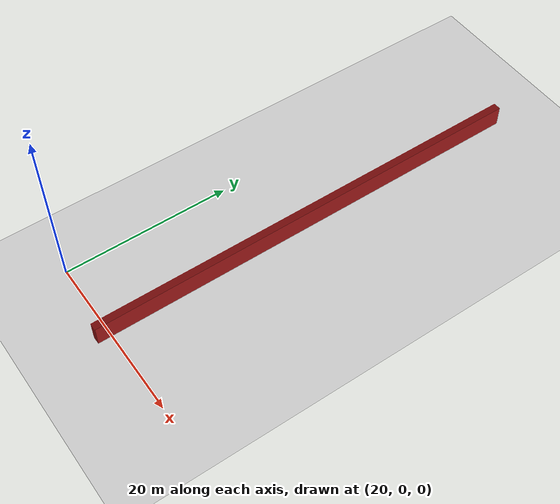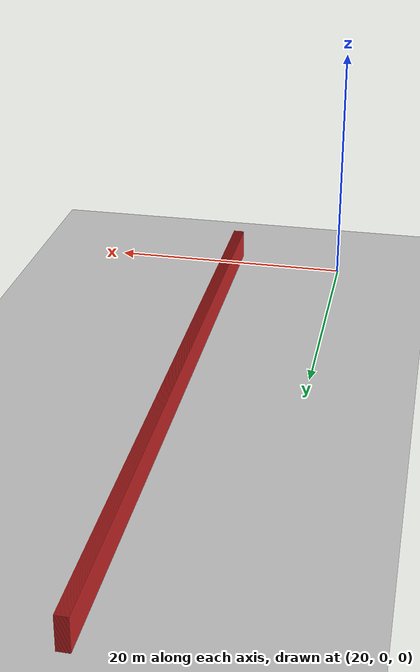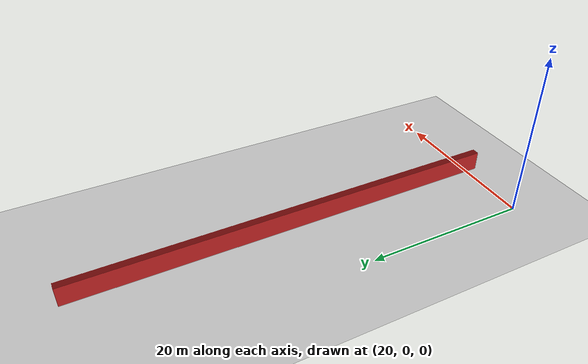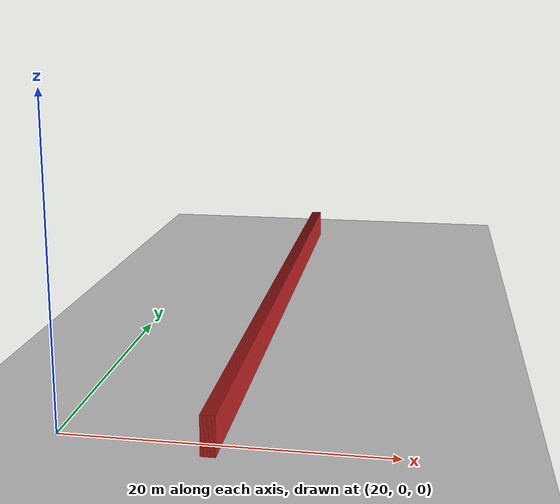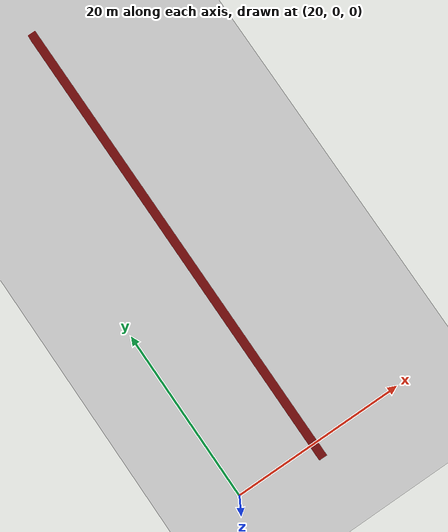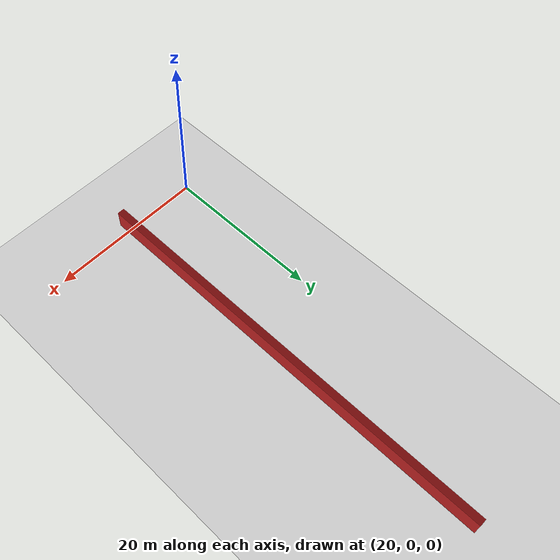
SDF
<sdf version="1.4">
 <world name="1_wall">
  <model name="ground_plane">
   <static>1</static>
   <link name="link">
    <collision name="collision">
     <geometry><plane><normal>0 0 1</normal><size>1000 1000</size></plane></geometry>
     <surface><friction><ode><mu>100</mu><mu2>50</mu2></ode></friction></surface>
    </collision>
    <visual name="visual">
     <cast_shadows>0</cast_shadows>
     <geometry><plane><normal>0 0 1</normal><size>10000 10000</size></plane></geometry>
     <material>
      <script><uri>file://media/materials/scripts/gazebo.material</uri><name>Gazebo/Grey</name></script>
     </material>
    </visual>
    <velocity_decay><linear>0</linear><angular>0</angular></velocity_decay>
   </link>
  </model>
  <model name="Wall_609">
   <static>1</static>
   <link name="Wall_609">
    <collision name="Wall_Collision_609">
     <geometry><box><size>53.65 0.05 2.5</size></box></geometry>
     <pose>0 0 1.25 0 -0 0</pose>
    </collision>
    <visual name="Wall_Visual_609">
     <pose>0 0 1.25 0 -0 0</pose>
     <geometry><box><size>53.65 0.05 2.5</size></box></geometry>
     <material>
      <script><uri>file://media/materials/scripts/gazebo.material</uri><name>Gazebo/Red</name></script>
     </material>
    </visual>
    <velocity_decay><linear>0</linear><angular>0</angular></velocity_decay>
    <pose>28.95 25.3 0 0 0 1.5707963267948966</pose>
   </link>
  </model>
  <model name="Wall_610">
   <static>1</static>
   <link name="Wall_610">
    <collision name="Wall_Collision_610">
     <geometry><box><size>53.65 0.05 2.5</size></box></geometry>
     <pose>0 0 1.25 0 -0 0</pose>
    </collision>
    <visual name="Wall_Visual_610">
     <pose>0 0 1.25 0 -0 0</pose>
     <geometry><box><size>53.65 0.05 2.5</size></box></geometry>
     <material>
      <script><uri>file://media/materials/scripts/gazebo.material</uri><name>Gazebo/Red</name></script>
     </material>
    </visual>
    <velocity_decay><linear>0</linear><angular>0</angular></velocity_decay>
    <pose>29.0 25.3 0 0 0 1.5707963267948966</pose>
   </link>
  </model>
  <model name="Wall_611">
   <static>1</static>
   <link name="Wall_611">
    <collision name="Wall_Collision_611">
     <geometry><box><size>53.65 0.05 2.5</size></box></geometry>
     <pose>0 0 1.25 0 -0 0</pose>
    </collision>
    <visual name="Wall_Visual_611">
     <pose>0 0 1.25 0 -0 0</pose>
     <geometry><box><size>53.65 0.05 2.5</size></box></geometry>
     <material>
      <script><uri>file://media/materials/scripts/gazebo.material</uri><name>Gazebo/Red</name></script>
     </material>
    </visual>
    <velocity_decay><linear>0</linear><angular>0</angular></velocity_decay>
    <pose>29.05 25.3 0 0 0 1.5707963267948966</pose>
   </link>
  </model>
  <model name="Wall_612">
   <static>1</static>
   <link name="Wall_612">
    <collision name="Wall_Collision_612">
     <geometry><box><size>53.65 0.05 2.5</size></box></geometry>
     <pose>0 0 1.25 0 -0 0</pose>
    </collision>
    <visual name="Wall_Visual_612">
     <pose>0 0 1.25 0 -0 0</pose>
     <geometry><box><size>53.65 0.05 2.5</size></box></geometry>
     <material>
      <script><uri>file://media/materials/scripts/gazebo.material</uri><name>Gazebo/Red</name></script>
     </material>
    </visual>
    <velocity_decay><linear>0</linear><angular>0</angular></velocity_decay>
    <pose>29.1 25.3 0 0 0 1.5707963267948966</pose>
   </link>
  </model>
  <model name="Wall_613">
   <static>1</static>
   <link name="Wall_613">
    <collision name="Wall_Collision_613">
     <geometry><box><size>53.65 0.05 2.5</size></box></geometry>
     <pose>0 0 1.25 0 -0 0</pose>
    </collision>
    <visual name="Wall_Visual_613">
     <pose>0 0 1.25 0 -0 0</pose>
     <geometry><box><size>53.65 0.05 2.5</size></box></geometry>
     <material>
      <script><uri>file://media/materials/scripts/gazebo.material</uri><name>Gazebo/Red</name></script>
     </material>
    </visual>
    <velocity_decay><linear>0</linear><angular>0</angular></velocity_decay>
    <pose>29.15 25.3 0 0 0 1.5707963267948966</pose>
   </link>
  </model>
  <model name="Wall_614">
   <static>1</static>
   <link name="Wall_614">
    <collision name="Wall_Collision_614">
     <geometry><box><size>53.65 0.05 2.5</size></box></geometry>
     <pose>0 0 1.25 0 -0 0</pose>
    </collision>
    <visual name="Wall_Visual_614">
     <pose>0 0 1.25 0 -0 0</pose>
     <geometry><box><size>53.65 0.05 2.5</size></box></geometry>
     <material>
      <script><uri>file://media/materials/scripts/gazebo.material</uri><name>Gazebo/Red</name></script>
     </material>
    </visual>
    <velocity_decay><linear>0</linear><angular>0</angular></velocity_decay>
    <pose>29.2 25.3 0 0 0 1.5707963267948966</pose>
   </link>
  </model>
  <model name="Wall_615">
   <static>1</static>
   <link name="Wall_615">
    <collision name="Wall_Collision_615">
     <geometry><box><size>53.65 0.05 2.5</size></box></geometry>
     <pose>0 0 1.25 0 -0 0</pose>
    </collision>
    <visual name="Wall_Visual_615">
     <pose>0 0 1.25 0 -0 0</pose>
     <geometry><box><size>53.65 0.05 2.5</size></box></geometry>
     <material>
      <script><uri>file://media/materials/scripts/gazebo.material</uri><name>Gazebo/Red</name></script>
     </material>
    </visual>
    <velocity_decay><linear>0</linear><angular>0</angular></velocity_decay>
    <pose>29.25 25.3 0 0 0 1.5707963267948966</pose>
   </link>
  </model>
  <model name="Wall_616">
   <static>1</static>
   <link name="Wall_616">
    <collision name="Wall_Collision_616">
     <geometry><box><size>53.65 0.05 2.5</size></box></geometry>
     <pose>0 0 1.25 0 -0 0</pose>
    </collision>
    <visual name="Wall_Visual_616">
     <pose>0 0 1.25 0 -0 0</pose>
     <geometry><box><size>53.65 0.05 2.5</size></box></geometry>
     <material>
      <script><uri>file://media/materials/scripts/gazebo.material</uri><name>Gazebo/Red</name></script>
     </material>
    </visual>
    <velocity_decay><linear>0</linear><angular>0</angular></velocity_decay>
    <pose>29.3 25.3 0 0 0 1.5707963267948966</pose>
   </link>
  </model>
  <model name="Wall_617">
   <static>1</static>
   <link name="Wall_617">
    <collision name="Wall_Collision_617">
     <geometry><box><size>53.65 0.05 2.5</size></box></geometry>
     <pose>0 0 1.25 0 -0 0</pose>
    </collision>
    <visual name="Wall_Visual_617">
     <pose>0 0 1.25 0 -0 0</pose>
     <geometry><box><size>53.65 0.05 2.5</size></box></geometry>
     <material>
      <script><uri>file://media/materials/scripts/gazebo.material</uri><name>Gazebo/Red</name></script>
     </material>
    </visual>
    <velocity_decay><linear>0</linear><angular>0</angular></velocity_decay>
    <pose>29.35 25.3 0 0 0 1.5707963267948966</pose>
   </link>
  </model>
  <model name="Wall_618">
   <static>1</static>
   <link name="Wall_618">
    <collision name="Wall_Collision_618">
     <geometry><box><size>53.65 0.05 2.5</size></box></geometry>
     <pose>0 0 1.25 0 -0 0</pose>
    </collision>
    <visual name="Wall_Visual_618">
     <pose>0 0 1.25 0 -0 0</pose>
     <geometry><box><size>53.65 0.05 2.5</size></box></geometry>
     <material>
      <script><uri>file://media/materials/scripts/gazebo.material</uri><name>Gazebo/Red</name></script>
     </material>
    </visual>
    <velocity_decay><linear>0</linear><angular>0</angular></velocity_decay>
    <pose>29.4 25.3 0 0 0 1.5707963267948966</pose>
   </link>
  </model>
  <model name="Wall_619">
   <static>1</static>
   <link name="Wall_619">
    <collision name="Wall_Collision_619">
     <geometry><box><size>53.65 0.05 2.5</size></box></geometry>
     <pose>0 0 1.25 0 -0 0</pose>
    </collision>
    <visual name="Wall_Visual_619">
     <pose>0 0 1.25 0 -0 0</pose>
     <geometry><box><size>53.65 0.05 2.5</size></box></geometry>
     <material>
      <script><uri>file://media/materials/scripts/gazebo.material</uri><name>Gazebo/Red</name></script>
     </material>
    </visual>
    <velocity_decay><linear>0</linear><angular>0</angular></velocity_decay>
    <pose>29.45 25.3 0 0 0 1.5707963267948966</pose>
   </link>
  </model>
  <model name="Wall_620">
   <static>1</static>
   <link name="Wall_620">
    <collision name="Wall_Collision_620">
     <geometry><box><size>53.65 0.05 2.5</size></box></geometry>
     <pose>0 0 1.25 0 -0 0</pose>
    </collision>
    <visual name="Wall_Visual_620">
     <pose>0 0 1.25 0 -0 0</pose>
     <geometry><box><size>53.65 0.05 2.5</size></box></geometry>
     <material>
      <script><uri>file://media/materials/scripts/gazebo.material</uri><name>Gazebo/Red</name></script>
     </material>
    </visual>
    <velocity_decay><linear>0</linear><angular>0</angular></velocity_decay>
    <pose>29.5 25.3 0 0 0 1.5707963267948966</pose>
   </link>
  </model>
  <model name="Wall_621">
   <static>1</static>
   <link name="Wall_621">
    <collision name="Wall_Collision_621">
     <geometry><box><size>53.65 0.05 2.5</size></box></geometry>
     <pose>0 0 1.25 0 -0 0</pose>
    </collision>
    <visual name="Wall_Visual_621">
     <pose>0 0 1.25 0 -0 0</pose>
     <geometry><box><size>53.65 0.05 2.5</size></box></geometry>
     <material>
      <script><uri>file://media/materials/scripts/gazebo.material</uri><name>Gazebo/Red</name></script>
     </material>
    </visual>
    <velocity_decay><linear>0</linear><angular>0</angular></velocity_decay>
    <pose>29.55 25.3 0 0 0 1.5707963267948966</pose>
   </link>
  </model>
  <model name="Wall_622">
   <static>1</static>
   <link name="Wall_622">
    <collision name="Wall_Collision_622">
     <geometry><box><size>53.65 0.05 2.5</size></box></geometry>
     <pose>0 0 1.25 0 -0 0</pose>
    </collision>
    <visual name="Wall_Visual_622">
     <pose>0 0 1.25 0 -0 0</pose>
     <geometry><box><size>53.65 0.05 2.5</size></box></geometry>
     <material>
      <script><uri>file://media/materials/scripts/gazebo.material</uri><name>Gazebo/Red</name></script>
     </material>
    </visual>
    <velocity_decay><linear>0</linear><angular>0</angular></velocity_decay>
    <pose>29.6 25.3 0 0 0 1.5707963267948966</pose>
   </link>
  </model>
  <model name="Wall_623">
   <static>1</static>
   <link name="Wall_623">
    <collision name="Wall_Collision_623">
     <geometry><box><size>53.65 0.05 2.5</size></box></geometry>
     <pose>0 0 1.25 0 -0 0</pose>
    </collision>
    <visual name="Wall_Visual_623">
     <pose>0 0 1.25 0 -0 0</pose>
     <geometry><box><size>53.65 0.05 2.5</size></box></geometry>
     <material>
      <script><uri>file://media/materials/scripts/gazebo.material</uri><name>Gazebo/Red</name></script>
     </material>
    </visual>
    <velocity_decay><linear>0</linear><angular>0</angular></velocity_decay>
    <pose>29.65 25.3 0 0 0 1.5707963267948966</pose>
   </link>
  </model>
  <model name="Wall_624">
   <static>1</static>
   <link name="Wall_624">
    <collision name="Wall_Collision_624">
     <geometry><box><size>53.65 0.05 2.5</size></box></geometry>
     <pose>0 0 1.25 0 -0 0</pose>
    </collision>
    <visual name="Wall_Visual_624">
     <pose>0 0 1.25 0 -0 0</pose>
     <geometry><box><size>53.65 0.05 2.5</size></box></geometry>
     <material>
      <script><uri>file://media/materials/scripts/gazebo.material</uri><name>Gazebo/Red</name></script>
     </material>
    </visual>
    <velocity_decay><linear>0</linear><angular>0</angular></velocity_decay>
    <pose>29.7 25.3 0 0 0 1.5707963267948966</pose>
   </link>
  </model>
  <model name="Wall_625">
   <static>1</static>
   <link name="Wall_625">
    <collision name="Wall_Collision_625">
     <geometry><box><size>53.65 0.05 2.5</size></box></geometry>
     <pose>0 0 1.25 0 -0 0</pose>
    </collision>
    <visual name="Wall_Visual_625">
     <pose>0 0 1.25 0 -0 0</pose>
     <geometry><box><size>53.65 0.05 2.5</size></box></geometry>
     <material>
      <script><uri>file://media/materials/scripts/gazebo.material</uri><name>Gazebo/Red</name></script>
     </material>
    </visual>
    <velocity_decay><linear>0</linear><angular>0</angular></velocity_decay>
    <pose>29.75 25.3 0 0 0 1.5707963267948966</pose>
   </link>
  </model>
  <model name="Wall_626">
   <static>1</static>
   <link name="Wall_626">
    <collision name="Wall_Collision_626">
     <geometry><box><size>53.65 0.05 2.5</size></box></geometry>
     <pose>0 0 1.25 0 -0 0</pose>
    </collision>
    <visual name="Wall_Visual_626">
     <pose>0 0 1.25 0 -0 0</pose>
     <geometry><box><size>53.65 0.05 2.5</size></box></geometry>
     <material>
      <script><uri>file://media/materials/scripts/gazebo.material</uri><name>Gazebo/Red</name></script>
     </material>
    </visual>
    <velocity_decay><linear>0</linear><angular>0</angular></velocity_decay>
    <pose>29.8 25.3 0 0 0 1.5707963267948966</pose>
   </link>
  </model>
 </world>
</sdf>
